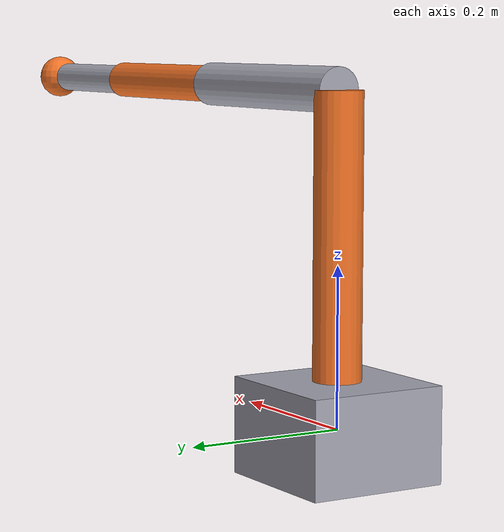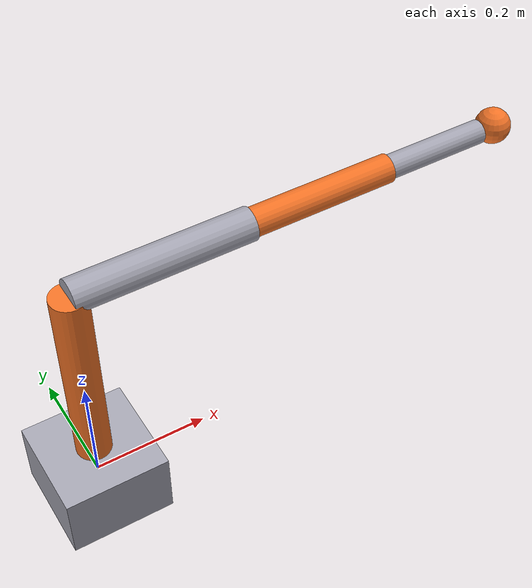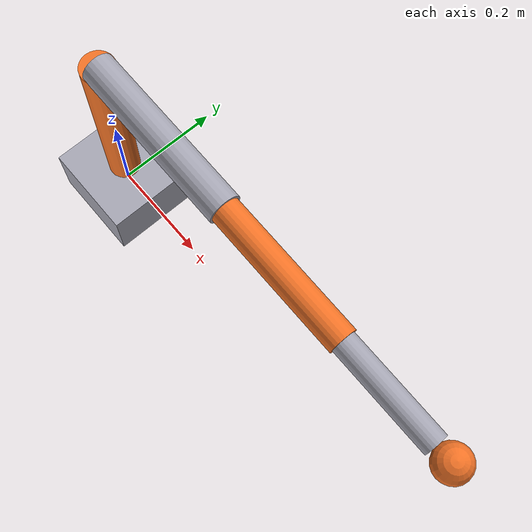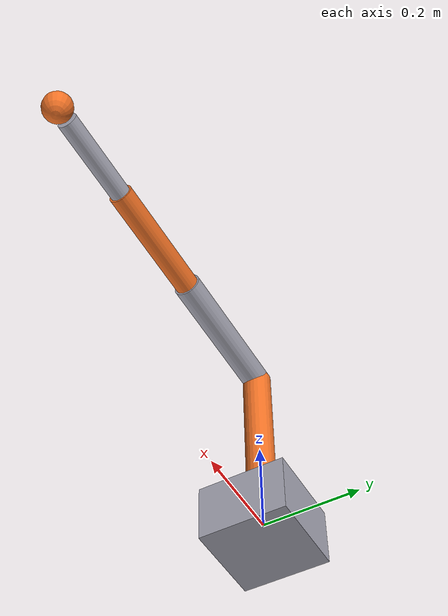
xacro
<?xml version="1.0"?>
<robot name="stick_arm_4dof" xmlns:xacro="http://www.ros.org/wiki/xacro">
  <xacro:arg name="name" default="stick_arm"/>
  <xacro:arg name="prefix" default=""/>
  <xacro:arg name="controllers_file" default=""/>

  <xacro:property name="name" value="$(arg name)"/>
  <xacro:property name="prefix" value="$(arg prefix)"/>
  <xacro:property name="l1" value="0.35"/>
  <xacro:property name="l2" value="0.30"/>
  <xacro:property name="l3" value="0.25"/>
  <xacro:property name="l4" value="0.18"/>

  <material name="steel_gray">
    <color rgba="0.65 0.65 0.7 1.0"/>
  </material>
  <material name="orange_accent">
    <color rgba="0.95 0.45 0.15 1.0"/>
  </material>

  <link name="${prefix}base_link">
    <visual>
      <geometry>
        <box size="0.18 0.18 0.12"/>
      </geometry>
      <material name="steel_gray"/>
    </visual>
    <collision>
      <geometry>
        <box size="0.18 0.18 0.12"/>
      </geometry>
    </collision>
    <inertial>
      <origin xyz="0 0 0" rpy="0 0 0"/>
      <mass value="2.0"/>
      <inertia ixx="0.012" ixy="0.0" ixz="0.0" iyy="0.012" iyz="0.0" izz="0.012"/>
    </inertial>
  </link>

  <link name="${prefix}link1">
    <visual>
      <origin xyz="0 0 ${l1 / 2.0}" rpy="0 0 0"/>
      <geometry>
        <cylinder length="${l1}" radius="0.03"/>
      </geometry>
      <material name="orange_accent"/>
    </visual>
    <collision>
      <origin xyz="0 0 ${l1 / 2.0}" rpy="0 0 0"/>
      <geometry>
        <cylinder length="${l1}" radius="0.03"/>
      </geometry>
    </collision>
    <inertial>
      <origin xyz="0 0 ${l1 / 2.0}" rpy="0 0 0"/>
      <mass value="1.2"/>
      <inertia ixx="0.013" ixy="0.0" ixz="0.0" iyy="0.013" iyz="0.0" izz="0.0006"/>
    </inertial>
  </link>

  <joint name="${prefix}joint1" type="revolute">
    <origin xyz="0 0 0.06" rpy="0 0 0"/>
    <parent link="${prefix}base_link"/>
    <child link="${prefix}link1"/>
    <axis xyz="0 0 1"/>
    <limit lower="-3.14159" upper="3.14159" effort="30.0" velocity="2.0"/>
    <dynamics damping="0.15" friction="0.05"/>
  </joint>

  <link name="${prefix}link2">
    <visual>
      <origin xyz="${l2 / 2.0} 0 0" rpy="0 1.57079632679 0"/>
      <geometry>
        <cylinder length="${l2}" radius="0.028"/>
      </geometry>
      <material name="steel_gray"/>
    </visual>
    <collision>
      <origin xyz="${l2 / 2.0} 0 0" rpy="0 1.57079632679 0"/>
      <geometry>
        <cylinder length="${l2}" radius="0.028"/>
      </geometry>
    </collision>
    <inertial>
      <origin xyz="${l2 / 2.0} 0 0" rpy="0 0 0"/>
      <mass value="0.9"/>
      <inertia ixx="0.0004" ixy="0.0" ixz="0.0" iyy="0.0068" iyz="0.0" izz="0.0068"/>
    </inertial>
  </link>

  <joint name="${prefix}joint2" type="revolute">
    <origin xyz="0 0 ${l1}" rpy="0 0 0"/>
    <parent link="${prefix}link1"/>
    <child link="${prefix}link2"/>
    <axis xyz="0 1 0"/>
    <limit lower="-2.2" upper="2.2" effort="25.0" velocity="2.0"/>
    <dynamics damping="0.12" friction="0.03"/>
  </joint>

  <link name="${prefix}link3">
    <visual>
      <origin xyz="${l3 / 2.0} 0 0" rpy="0 1.57079632679 0"/>
      <geometry>
        <cylinder length="${l3}" radius="0.024"/>
      </geometry>
      <material name="orange_accent"/>
    </visual>
    <collision>
      <origin xyz="${l3 / 2.0} 0 0" rpy="0 1.57079632679 0"/>
      <geometry>
        <cylinder length="${l3}" radius="0.024"/>
      </geometry>
    </collision>
    <inertial>
      <origin xyz="${l3 / 2.0} 0 0" rpy="0 0 0"/>
      <mass value="0.7"/>
      <inertia ixx="0.00025" ixy="0.0" ixz="0.0" iyy="0.0037" iyz="0.0" izz="0.0037"/>
    </inertial>
  </link>

  <joint name="${prefix}joint3" type="revolute">
    <origin xyz="${l2} 0 0" rpy="0 0 0"/>
    <parent link="${prefix}link2"/>
    <child link="${prefix}link3"/>
    <axis xyz="0 1 0"/>
    <limit lower="-2.2" upper="2.2" effort="20.0" velocity="2.2"/>
    <dynamics damping="0.10" friction="0.03"/>
  </joint>

  <link name="${prefix}link4">
    <visual>
      <origin xyz="${l4 / 2.0} 0 0" rpy="0 1.57079632679 0"/>
      <geometry>
        <cylinder length="${l4}" radius="0.02"/>
      </geometry>
      <material name="steel_gray"/>
    </visual>
    <collision>
      <origin xyz="${l4 / 2.0} 0 0" rpy="0 1.57079632679 0"/>
      <geometry>
        <cylinder length="${l4}" radius="0.02"/>
      </geometry>
    </collision>
    <inertial>
      <origin xyz="${l4 / 2.0} 0 0" rpy="0 0 0"/>
      <mass value="0.5"/>
      <inertia ixx="0.00012" ixy="0.0" ixz="0.0" iyy="0.0014" iyz="0.0" izz="0.0014"/>
    </inertial>
  </link>

  <joint name="${prefix}joint4" type="revolute">
    <origin xyz="${l3} 0 0" rpy="0 0 0"/>
    <parent link="${prefix}link3"/>
    <child link="${prefix}link4"/>
    <axis xyz="0 1 0"/>
    <limit lower="-2.5" upper="2.5" effort="15.0" velocity="2.5"/>
    <dynamics damping="0.08" friction="0.02"/>
  </joint>

  <link name="${prefix}tool0">
    <visual>
      <origin xyz="0.03 0 0" rpy="0 0 0"/>
      <geometry>
        <sphere radius="0.03"/>
      </geometry>
      <material name="orange_accent"/>
    </visual>
    <collision>
      <origin xyz="0.03 0 0" rpy="0 0 0"/>
      <geometry>
        <sphere radius="0.03"/>
      </geometry>
    </collision>
    <inertial>
      <origin xyz="0.03 0 0" rpy="0 0 0"/>
      <mass value="0.1"/>
      <inertia ixx="0.00003" ixy="0.0" ixz="0.0" iyy="0.00003" iyz="0.0" izz="0.00003"/>
    </inertial>
  </link>

  <joint name="${prefix}tool_joint" type="fixed">
    <origin xyz="${l4} 0 0" rpy="0 0 0"/>
    <parent link="${prefix}link4"/>
    <child link="${prefix}tool0"/>
  </joint>

  <ros2_control name="${name}_system" type="system">
    <hardware>
      <plugin>gz_ros2_control/GazeboSimSystem</plugin>
    </hardware>

    <joint name="${prefix}joint1">
      <command_interface name="position"/>
      <state_interface name="position"/>
      <state_interface name="velocity"/>
    </joint>
    <joint name="${prefix}joint2">
      <command_interface name="position"/>
      <state_interface name="position"/>
      <state_interface name="velocity"/>
    </joint>
    <joint name="${prefix}joint3">
      <command_interface name="position"/>
      <state_interface name="position"/>
      <state_interface name="velocity"/>
    </joint>
    <joint name="${prefix}joint4">
      <command_interface name="position"/>
      <state_interface name="position"/>
      <state_interface name="velocity"/>
    </joint>
  </ros2_control>

  <transmission name="${prefix}joint1_transmission">
    <type>transmission_interface/SimpleTransmission</type>
    <joint name="${prefix}joint1">
      <hardwareInterface>hardware_interface/PositionJointInterface</hardwareInterface>
    </joint>
    <actuator name="${prefix}joint1_motor">
      <hardwareInterface>hardware_interface/PositionJointInterface</hardwareInterface>
      <mechanicalReduction>1.0</mechanicalReduction>
    </actuator>
  </transmission>

  <transmission name="${prefix}joint2_transmission">
    <type>transmission_interface/SimpleTransmission</type>
    <joint name="${prefix}joint2">
      <hardwareInterface>hardware_interface/PositionJointInterface</hardwareInterface>
    </joint>
    <actuator name="${prefix}joint2_motor">
      <hardwareInterface>hardware_interface/PositionJointInterface</hardwareInterface>
      <mechanicalReduction>1.0</mechanicalReduction>
    </actuator>
  </transmission>

  <transmission name="${prefix}joint3_transmission">
    <type>transmission_interface/SimpleTransmission</type>
    <joint name="${prefix}joint3">
      <hardwareInterface>hardware_interface/PositionJointInterface</hardwareInterface>
    </joint>
    <actuator name="${prefix}joint3_motor">
      <hardwareInterface>hardware_interface/PositionJointInterface</hardwareInterface>
      <mechanicalReduction>1.0</mechanicalReduction>
    </actuator>
  </transmission>

  <transmission name="${prefix}joint4_transmission">
    <type>transmission_interface/SimpleTransmission</type>
    <joint name="${prefix}joint4">
      <hardwareInterface>hardware_interface/PositionJointInterface</hardwareInterface>
    </joint>
    <actuator name="${prefix}joint4_motor">
      <hardwareInterface>hardware_interface/PositionJointInterface</hardwareInterface>
      <mechanicalReduction>1.0</mechanicalReduction>
    </actuator>
  </transmission>

  <gazebo>
    <plugin filename="libgz_ros2_control-system.so" name="gz_ros2_control::GazeboSimROS2ControlPlugin">
      <parameters>$(arg controllers_file)</parameters>
    </plugin>
  </gazebo>
</robot>
